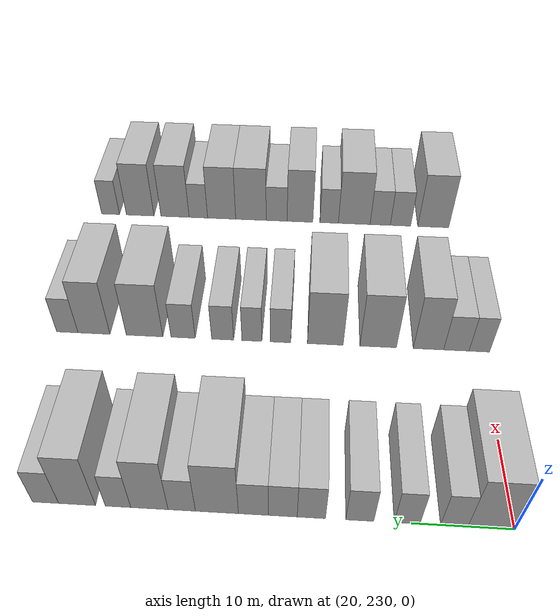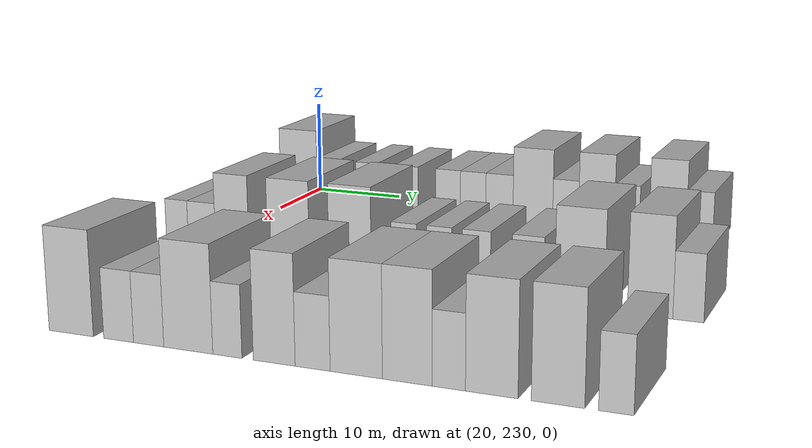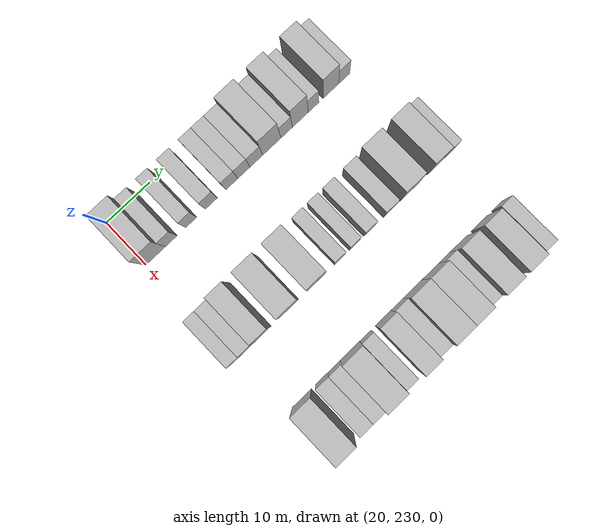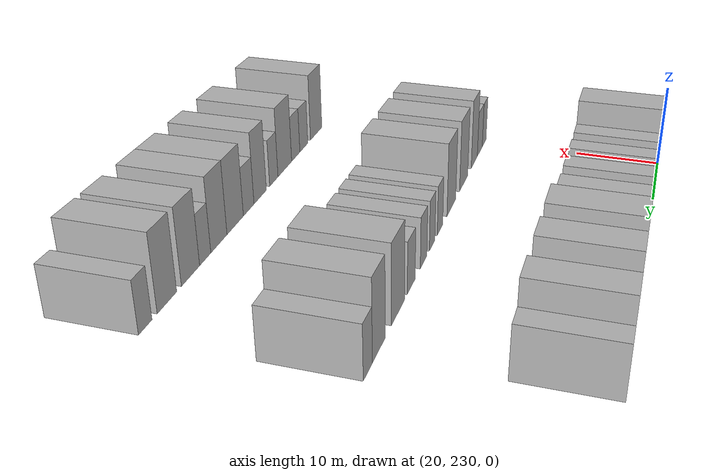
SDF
<sdf version="1.6">
 <world name="default">
  <model name="building_153">
   <static>1</static>
   <pose>25.0000 232.2535 0 0.000000 0.000000 0.000000</pose>
   <link name="link">
    <pose>0 0 4.50 0 0 0</pose>
    <collision name="collision"><geometry><box><size>10.0000 4.4986 9.0000</size></box></geometry></collision>
    <visual name="visual">
     <cast_shadows>0</cast_shadows>
     <geometry><box><size>10.0000 4.4986 9.0000</size></box></geometry>
     <material>
      <script>
       <uri>model://HANNAS_wall/materials/scripts</uri>
       <uri>model://HANNAS_wall/materials/textures</uri>
       <name>vrc/HANNAS_wall</name>
      </script>
     </material>
    </visual>
   </link>
  </model>
  <model name="building_154">
   <static>1</static>
   <pose>25.0000 235.8311 0 0.000000 0.000000 0.000000</pose>
   <link name="link">
    <pose>0 0 3.00 0 0 0</pose>
    <collision name="collision"><geometry><box><size>10.0000 2.6566 6.0000</size></box></geometry></collision>
    <visual name="visual">
     <cast_shadows>0</cast_shadows>
     <geometry><box><size>10.0000 2.6566 6.0000</size></box></geometry>
     <material>
      <script>
       <uri>model://HANNAS_wall/materials/scripts</uri>
       <uri>model://HANNAS_wall/materials/textures</uri>
       <name>vrc/HANNAS_wall</name>
      </script>
     </material>
    </visual>
   </link>
  </model>
  <model name="building_155">
   <static>1</static>
   <pose>25.0000 240.4203 0 0.000000 0.000000 0.000000</pose>
   <link name="link">
    <pose>0 0 3.00 0 0 0</pose>
    <collision name="collision"><geometry><box><size>10.0000 2.5218 6.0000</size></box></geometry></collision>
    <visual name="visual">
     <cast_shadows>0</cast_shadows>
     <geometry><box><size>10.0000 2.5218 6.0000</size></box></geometry>
     <material>
      <script>
       <uri>model://HANNAS_wall/materials/scripts</uri>
       <uri>model://HANNAS_wall/materials/textures</uri>
       <name>vrc/HANNAS_wall</name>
      </script>
     </material>
    </visual>
   </link>
  </model>
  <model name="building_156">
   <static>1</static>
   <pose>25.0000 245.0591 0 0.000000 0.000000 0.000000</pose>
   <link name="link">
    <pose>0 0 3.00 0 0 0</pose>
    <collision name="collision"><geometry><box><size>10.0000 2.7556 6.0000</size></box></geometry></collision>
    <visual name="visual">
     <cast_shadows>0</cast_shadows>
     <geometry><box><size>10.0000 2.7556 6.0000</size></box></geometry>
     <material>
      <script>
       <uri>model://HANNAS_wall/materials/scripts</uri>
       <uri>model://HANNAS_wall/materials/textures</uri>
       <name>vrc/HANNAS_wall</name>
      </script>
     </material>
    </visual>
   </link>
  </model>
  <model name="building_157">
   <static>1</static>
   <pose>25.0000 249.8324 0 0.000000 0.000000 0.000000</pose>
   <link name="link">
    <pose>0 0 3.00 0 0 0</pose>
    <collision name="collision"><geometry><box><size>10.0000 2.7912 6.0000</size></box></geometry></collision>
    <visual name="visual">
     <cast_shadows>0</cast_shadows>
     <geometry><box><size>10.0000 2.7912 6.0000</size></box></geometry>
     <material>
      <script>
       <uri>model://HANNAS_wall/materials/scripts</uri>
       <uri>model://HANNAS_wall/materials/textures</uri>
       <name>vrc/HANNAS_wall</name>
      </script>
     </material>
    </visual>
   </link>
  </model>
  <model name="building_158">
   <static>1</static>
   <pose>25.0000 252.6497 0 0.000000 0.000000 0.000000</pose>
   <link name="link">
    <pose>0 0 3.00 0 0 0</pose>
    <collision name="collision"><geometry><box><size>10.0000 2.8433 6.0000</size></box></geometry></collision>
    <visual name="visual">
     <cast_shadows>0</cast_shadows>
     <geometry><box><size>10.0000 2.8433 6.0000</size></box></geometry>
     <material>
      <script>
       <uri>model://HANNAS_wall/materials/scripts</uri>
       <uri>model://HANNAS_wall/materials/textures</uri>
       <name>vrc/HANNAS_wall</name>
      </script>
     </material>
    </visual>
   </link>
  </model>
  <model name="building_159">
   <static>1</static>
   <pose>25.0000 255.5650 0 0.000000 0.000000 0.000000</pose>
   <link name="link">
    <pose>0 0 3.00 0 0 0</pose>
    <collision name="collision"><geometry><box><size>10.0000 2.9873 6.0000</size></box></geometry></collision>
    <visual name="visual">
     <cast_shadows>0</cast_shadows>
     <geometry><box><size>10.0000 2.9873 6.0000</size></box></geometry>
     <material>
      <script>
       <uri>model://HANNAS_wall/materials/scripts</uri>
       <uri>model://HANNAS_wall/materials/textures</uri>
       <name>vrc/HANNAS_wall</name>
      </script>
     </material>
    </visual>
   </link>
  </model>
  <model name="building_160">
   <static>1</static>
   <pose>25.0000 259.2042 0 0.000000 0.000000 0.000000</pose>
   <link name="link">
    <pose>0 0 4.50 0 0 0</pose>
    <collision name="collision"><geometry><box><size>10.0000 4.2912 9.0000</size></box></geometry></collision>
    <visual name="visual">
     <cast_shadows>0</cast_shadows>
     <geometry><box><size>10.0000 4.2912 9.0000</size></box></geometry>
     <material>
      <script>
       <uri>model://HANNAS_wall/materials/scripts</uri>
       <uri>model://HANNAS_wall/materials/textures</uri>
       <name>vrc/HANNAS_wall</name>
      </script>
     </material>
    </visual>
   </link>
  </model>
  <model name="building_161">
   <static>1</static>
   <pose>25.0000 262.7184 0 0.000000 0.000000 0.000000</pose>
   <link name="link">
    <pose>0 0 3.00 0 0 0</pose>
    <collision name="collision"><geometry><box><size>10.0000 2.7372 6.0000</size></box></geometry></collision>
    <visual name="visual">
     <cast_shadows>0</cast_shadows>
     <geometry><box><size>10.0000 2.7372 6.0000</size></box></geometry>
     <material>
      <script>
       <uri>model://HANNAS_wall/materials/scripts</uri>
       <uri>model://HANNAS_wall/materials/textures</uri>
       <name>vrc/HANNAS_wall</name>
      </script>
     </material>
    </visual>
   </link>
  </model>
  <model name="building_162">
   <static>1</static>
   <pose>25.0000 265.9661 0 0.000000 0.000000 0.000000</pose>
   <link name="link">
    <pose>0 0 4.50 0 0 0</pose>
    <collision name="collision"><geometry><box><size>10.0000 3.7582 9.0000</size></box></geometry></collision>
    <visual name="visual">
     <cast_shadows>0</cast_shadows>
     <geometry><box><size>10.0000 3.7582 9.0000</size></box></geometry>
     <material>
      <script>
       <uri>model://HANNAS_wall/materials/scripts</uri>
       <uri>model://HANNAS_wall/materials/textures</uri>
       <name>vrc/HANNAS_wall</name>
      </script>
     </material>
    </visual>
   </link>
  </model>
  <model name="building_163">
   <static>1</static>
   <pose>25.0000 269.1298 0 0.000000 0.000000 0.000000</pose>
   <link name="link">
    <pose>0 0 3.00 0 0 0</pose>
    <collision name="collision"><geometry><box><size>10.0000 2.5691 6.0000</size></box></geometry></collision>
    <visual name="visual">
     <cast_shadows>0</cast_shadows>
     <geometry><box><size>10.0000 2.5691 6.0000</size></box></geometry>
     <material>
      <script>
       <uri>model://HANNAS_wall/materials/scripts</uri>
       <uri>model://HANNAS_wall/materials/textures</uri>
       <name>vrc/HANNAS_wall</name>
      </script>
     </material>
    </visual>
   </link>
  </model>
  <model name="building_164">
   <static>1</static>
   <pose>25.0000 273.2810 0 0.000000 0.000000 0.000000</pose>
   <link name="link">
    <pose>0 0 4.50 0 0 0</pose>
    <collision name="collision"><geometry><box><size>10.0000 3.7334 9.0000</size></box></geometry></collision>
    <visual name="visual">
     <cast_shadows>0</cast_shadows>
     <geometry><box><size>10.0000 3.7334 9.0000</size></box></geometry>
     <material>
      <script>
       <uri>model://HANNAS_wall/materials/scripts</uri>
       <uri>model://HANNAS_wall/materials/textures</uri>
       <name>vrc/HANNAS_wall</name>
      </script>
     </material>
    </visual>
   </link>
  </model>
  <model name="building_165">
   <static>1</static>
   <pose>25.0000 276.4773 0 0.000000 0.000000 0.000000</pose>
   <link name="link">
    <pose>0 0 3.00 0 0 0</pose>
    <collision name="collision"><geometry><box><size>10.0000 2.6591 6.0000</size></box></geometry></collision>
    <visual name="visual">
     <cast_shadows>0</cast_shadows>
     <geometry><box><size>10.0000 2.6591 6.0000</size></box></geometry>
     <material>
      <script>
       <uri>model://HANNAS_wall/materials/scripts</uri>
       <uri>model://HANNAS_wall/materials/textures</uri>
       <name>vrc/HANNAS_wall</name>
      </script>
     </material>
    </visual>
   </link>
  </model>
  <model name="building_346">
   <static>1</static>
   <pose>47.0000 230.3441 0 0.000000 0.000000 0.000000</pose>
   <link name="link">
    <pose>0 0 3.00 0 0 0</pose>
    <collision name="collision"><geometry><box><size>10.0000 2.4305 6.0000</size></box></geometry></collision>
    <visual name="visual">
     <cast_shadows>0</cast_shadows>
     <geometry><box><size>10.0000 2.4305 6.0000</size></box></geometry>
     <material>
      <script>
       <uri>model://HANNAS_wall/materials/scripts</uri>
       <uri>model://HANNAS_wall/materials/textures</uri>
       <name>vrc/HANNAS_wall</name>
      </script>
     </material>
    </visual>
   </link>
  </model>
  <model name="building_347">
   <static>1</static>
   <pose>47.0000 233.0564 0 0.000000 0.000000 0.000000</pose>
   <link name="link">
    <pose>0 0 3.00 0 0 0</pose>
    <collision name="collision"><geometry><box><size>10.0000 2.9942 6.0000</size></box></geometry></collision>
    <visual name="visual">
     <cast_shadows>0</cast_shadows>
     <geometry><box><size>10.0000 2.9942 6.0000</size></box></geometry>
     <material>
      <script>
       <uri>model://HANNAS_wall/materials/scripts</uri>
       <uri>model://HANNAS_wall/materials/textures</uri>
       <name>vrc/HANNAS_wall</name>
      </script>
     </material>
    </visual>
   </link>
  </model>
  <model name="building_348">
   <static>1</static>
   <pose>47.0000 236.3539 0 0.000000 0.000000 0.000000</pose>
   <link name="link">
    <pose>0 0 4.50 0 0 0</pose>
    <collision name="collision"><geometry><box><size>10.0000 3.6007 9.0000</size></box></geometry></collision>
    <visual name="visual">
     <cast_shadows>0</cast_shadows>
     <geometry><box><size>10.0000 3.6007 9.0000</size></box></geometry>
     <material>
      <script>
       <uri>model://HANNAS_wall/materials/scripts</uri>
       <uri>model://HANNAS_wall/materials/textures</uri>
       <name>vrc/HANNAS_wall</name>
      </script>
     </material>
    </visual>
   </link>
  </model>
  <model name="building_349">
   <static>1</static>
   <pose>47.0000 242.3327 0 0.000000 0.000000 0.000000</pose>
   <link name="link">
    <pose>0 0 4.50 0 0 0</pose>
    <collision name="collision"><geometry><box><size>10.0000 4.3569 9.0000</size></box></geometry></collision>
    <visual name="visual">
     <cast_shadows>0</cast_shadows>
     <geometry><box><size>10.0000 4.3569 9.0000</size></box></geometry>
     <material>
      <script>
       <uri>model://HANNAS_wall/materials/scripts</uri>
       <uri>model://HANNAS_wall/materials/textures</uri>
       <name>vrc/HANNAS_wall</name>
      </script>
     </material>
    </visual>
   </link>
  </model>
  <model name="building_350">
   <static>1</static>
   <pose>47.0000 248.6556 0 0.000000 0.000000 0.000000</pose>
   <link name="link">
    <pose>0 0 4.50 0 0 0</pose>
    <collision name="collision"><geometry><box><size>10.0000 4.2888 9.0000</size></box></geometry></collision>
    <visual name="visual">
     <cast_shadows>0</cast_shadows>
     <geometry><box><size>10.0000 4.2888 9.0000</size></box></geometry>
     <material>
      <script>
       <uri>model://HANNAS_wall/materials/scripts</uri>
       <uri>model://HANNAS_wall/materials/textures</uri>
       <name>vrc/HANNAS_wall</name>
      </script>
     </material>
    </visual>
   </link>
  </model>
  <model name="building_351">
   <static>1</static>
   <pose>47.0000 254.0440 0 0.000000 0.000000 0.000000</pose>
   <link name="link">
    <pose>0 0 3.00 0 0 0</pose>
    <collision name="collision"><geometry><box><size>10.0000 2.4880 6.0000</size></box></geometry></collision>
    <visual name="visual">
     <cast_shadows>0</cast_shadows>
     <geometry><box><size>10.0000 2.4880 6.0000</size></box></geometry>
     <material>
      <script>
       <uri>model://HANNAS_wall/materials/scripts</uri>
       <uri>model://HANNAS_wall/materials/textures</uri>
       <name>vrc/HANNAS_wall</name>
      </script>
     </material>
    </visual>
   </link>
  </model>
  <model name="building_352">
   <static>1</static>
   <pose>47.0000 257.4914 0 0.000000 0.000000 0.000000</pose>
   <link name="link">
    <pose>0 0 3.00 0 0 0</pose>
    <collision name="collision"><geometry><box><size>10.0000 2.4069 6.0000</size></box></geometry></collision>
    <visual name="visual">
     <cast_shadows>0</cast_shadows>
     <geometry><box><size>10.0000 2.4069 6.0000</size></box></geometry>
     <material>
      <script>
       <uri>model://HANNAS_wall/materials/scripts</uri>
       <uri>model://HANNAS_wall/materials/textures</uri>
       <name>vrc/HANNAS_wall</name>
      </script>
     </material>
    </visual>
   </link>
  </model>
  <model name="building_353">
   <static>1</static>
   <pose>47.0000 261.0275 0 0.000000 0.000000 0.000000</pose>
   <link name="link">
    <pose>0 0 3.00 0 0 0</pose>
    <collision name="collision"><geometry><box><size>10.0000 2.6653 6.0000</size></box></geometry></collision>
    <visual name="visual">
     <cast_shadows>0</cast_shadows>
     <geometry><box><size>10.0000 2.6653 6.0000</size></box></geometry>
     <material>
      <script>
       <uri>model://HANNAS_wall/materials/scripts</uri>
       <uri>model://HANNAS_wall/materials/textures</uri>
       <name>vrc/HANNAS_wall</name>
      </script>
     </material>
    </visual>
   </link>
  </model>
  <model name="building_354">
   <static>1</static>
   <pose>47.0000 265.8358 0 0.000000 0.000000 0.000000</pose>
   <link name="link">
    <pose>0 0 3.00 0 0 0</pose>
    <collision name="collision"><geometry><box><size>10.0000 2.9512 6.0000</size></box></geometry></collision>
    <visual name="visual">
     <cast_shadows>0</cast_shadows>
     <geometry><box><size>10.0000 2.9512 6.0000</size></box></geometry>
     <material>
      <script>
       <uri>model://HANNAS_wall/materials/scripts</uri>
       <uri>model://HANNAS_wall/materials/textures</uri>
       <name>vrc/HANNAS_wall</name>
      </script>
     </material>
    </visual>
   </link>
  </model>
  <model name="building_355">
   <static>1</static>
   <pose>47.0000 270.5517 0 0.000000 0.000000 0.000000</pose>
   <link name="link">
    <pose>0 0 4.50 0 0 0</pose>
    <collision name="collision"><geometry><box><size>10.0000 4.4806 9.0000</size></box></geometry></collision>
    <visual name="visual">
     <cast_shadows>0</cast_shadows>
     <geometry><box><size>10.0000 4.4806 9.0000</size></box></geometry>
     <material>
      <script>
       <uri>model://HANNAS_wall/materials/scripts</uri>
       <uri>model://HANNAS_wall/materials/textures</uri>
       <name>vrc/HANNAS_wall</name>
      </script>
     </material>
    </visual>
   </link>
  </model>
  <model name="building_356">
   <static>1</static>
   <pose>47.0000 276.7595 0 0.000000 0.000000 0.000000</pose>
   <link name="link">
    <pose>0 0 4.50 0 0 0</pose>
    <collision name="collision"><geometry><box><size>10.0000 3.9350 9.0000</size></box></geometry></collision>
    <visual name="visual">
     <cast_shadows>0</cast_shadows>
     <geometry><box><size>10.0000 3.9350 9.0000</size></box></geometry>
     <material>
      <script>
       <uri>model://HANNAS_wall/materials/scripts</uri>
       <uri>model://HANNAS_wall/materials/textures</uri>
       <name>vrc/HANNAS_wall</name>
      </script>
     </material>
    </visual>
   </link>
  </model>
  <model name="building_357">
   <static>1</static>
   <pose>47.0000 280.0479 0 0.000000 0.000000 0.000000</pose>
   <link name="link">
    <pose>0 0 3.00 0 0 0</pose>
    <collision name="collision"><geometry><box><size>10.0000 2.6418 6.0000</size></box></geometry></collision>
    <visual name="visual">
     <cast_shadows>0</cast_shadows>
     <geometry><box><size>10.0000 2.6418 6.0000</size></box></geometry>
     <material>
      <script>
       <uri>model://HANNAS_wall/materials/scripts</uri>
       <uri>model://HANNAS_wall/materials/textures</uri>
       <name>vrc/HANNAS_wall</name>
      </script>
     </material>
    </visual>
   </link>
  </model>
  <model name="building_531">
   <static>1</static>
   <pose>69.0000 233.6946 0 0.000000 0.000000 0.000000</pose>
   <link name="link">
    <pose>0 0 4.50 0 0 0</pose>
    <collision name="collision"><geometry><box><size>10.0000 4.3137 9.0000</size></box></geometry></collision>
    <visual name="visual">
     <cast_shadows>0</cast_shadows>
     <geometry><box><size>10.0000 4.3137 9.0000</size></box></geometry>
     <material>
      <script>
       <uri>model://HANNAS_wall/materials/scripts</uri>
       <uri>model://HANNAS_wall/materials/textures</uri>
       <name>vrc/HANNAS_wall</name>
      </script>
     </material>
    </visual>
   </link>
  </model>
  <model name="building_532">
   <static>1</static>
   <pose>69.0000 238.2735 0 0.000000 0.000000 0.000000</pose>
   <link name="link">
    <pose>0 0 3.00 0 0 0</pose>
    <collision name="collision"><geometry><box><size>10.0000 2.8442 6.0000</size></box></geometry></collision>
    <visual name="visual">
     <cast_shadows>0</cast_shadows>
     <geometry><box><size>10.0000 2.8442 6.0000</size></box></geometry>
     <material>
      <script>
       <uri>model://HANNAS_wall/materials/scripts</uri>
       <uri>model://HANNAS_wall/materials/textures</uri>
       <name>vrc/HANNAS_wall</name>
      </script>
     </material>
    </visual>
   </link>
  </model>
  <model name="building_533">
   <static>1</static>
   <pose>69.0000 241.1104 0 0.000000 0.000000 0.000000</pose>
   <link name="link">
    <pose>0 0 3.00 0 0 0</pose>
    <collision name="collision"><geometry><box><size>10.0000 2.8296 6.0000</size></box></geometry></collision>
    <visual name="visual">
     <cast_shadows>0</cast_shadows>
     <geometry><box><size>10.0000 2.8296 6.0000</size></box></geometry>
     <material>
      <script>
       <uri>model://HANNAS_wall/materials/scripts</uri>
       <uri>model://HANNAS_wall/materials/textures</uri>
       <name>vrc/HANNAS_wall</name>
      </script>
     </material>
    </visual>
   </link>
  </model>
  <model name="building_534">
   <static>1</static>
   <pose>69.0000 244.7649 0 0.000000 0.000000 0.000000</pose>
   <link name="link">
    <pose>0 0 4.50 0 0 0</pose>
    <collision name="collision"><geometry><box><size>10.0000 4.4792 9.0000</size></box></geometry></collision>
    <visual name="visual">
     <cast_shadows>0</cast_shadows>
     <geometry><box><size>10.0000 4.4792 9.0000</size></box></geometry>
     <material>
      <script>
       <uri>model://HANNAS_wall/materials/scripts</uri>
       <uri>model://HANNAS_wall/materials/textures</uri>
       <name>vrc/HANNAS_wall</name>
      </script>
     </material>
    </visual>
   </link>
  </model>
  <model name="building_535">
   <static>1</static>
   <pose>69.0000 248.3080 0 0.000000 0.000000 0.000000</pose>
   <link name="link">
    <pose>0 0 3.00 0 0 0</pose>
    <collision name="collision"><geometry><box><size>10.0000 2.6070 6.0000</size></box></geometry></collision>
    <visual name="visual">
     <cast_shadows>0</cast_shadows>
     <geometry><box><size>10.0000 2.6070 6.0000</size></box></geometry>
     <material>
      <script>
       <uri>model://HANNAS_wall/materials/scripts</uri>
       <uri>model://HANNAS_wall/materials/textures</uri>
       <name>vrc/HANNAS_wall</name>
      </script>
     </material>
    </visual>
   </link>
  </model>
  <model name="building_536">
   <static>1</static>
   <pose>69.0000 252.4339 0 0.000000 0.000000 0.000000</pose>
   <link name="link">
    <pose>0 0 4.50 0 0 0</pose>
    <collision name="collision"><geometry><box><size>10.0000 3.6448 9.0000</size></box></geometry></collision>
    <visual name="visual">
     <cast_shadows>0</cast_shadows>
     <geometry><box><size>10.0000 3.6448 9.0000</size></box></geometry>
     <material>
      <script>
       <uri>model://HANNAS_wall/materials/scripts</uri>
       <uri>model://HANNAS_wall/materials/textures</uri>
       <name>vrc/HANNAS_wall</name>
      </script>
     </material>
    </visual>
   </link>
  </model>
  <model name="building_537">
   <static>1</static>
   <pose>69.0000 255.7431 0 0.000000 0.000000 0.000000</pose>
   <link name="link">
    <pose>0 0 3.00 0 0 0</pose>
    <collision name="collision"><geometry><box><size>10.0000 2.9737 6.0000</size></box></geometry></collision>
    <visual name="visual">
     <cast_shadows>0</cast_shadows>
     <geometry><box><size>10.0000 2.9737 6.0000</size></box></geometry>
     <material>
      <script>
       <uri>model://HANNAS_wall/materials/scripts</uri>
       <uri>model://HANNAS_wall/materials/textures</uri>
       <name>vrc/HANNAS_wall</name>
      </script>
     </material>
    </visual>
   </link>
  </model>
  <model name="building_538">
   <static>1</static>
   <pose>69.0000 259.4017 0 0.000000 0.000000 0.000000</pose>
   <link name="link">
    <pose>0 0 4.50 0 0 0</pose>
    <collision name="collision"><geometry><box><size>10.0000 4.3435 9.0000</size></box></geometry></collision>
    <visual name="visual">
     <cast_shadows>0</cast_shadows>
     <geometry><box><size>10.0000 4.3435 9.0000</size></box></geometry>
     <material>
      <script>
       <uri>model://HANNAS_wall/materials/scripts</uri>
       <uri>model://HANNAS_wall/materials/textures</uri>
       <name>vrc/HANNAS_wall</name>
      </script>
     </material>
    </visual>
   </link>
  </model>
  <model name="building_539">
   <static>1</static>
   <pose>69.0000 263.5780 0 0.000000 0.000000 0.000000</pose>
   <link name="link">
    <pose>0 0 4.50 0 0 0</pose>
    <collision name="collision"><geometry><box><size>10.0000 4.0091 9.0000</size></box></geometry></collision>
    <visual name="visual">
     <cast_shadows>0</cast_shadows>
     <geometry><box><size>10.0000 4.0091 9.0000</size></box></geometry>
     <material>
      <script>
       <uri>model://HANNAS_wall/materials/scripts</uri>
       <uri>model://HANNAS_wall/materials/textures</uri>
       <name>vrc/HANNAS_wall</name>
      </script>
     </material>
    </visual>
   </link>
  </model>
  <model name="building_540">
   <static>1</static>
   <pose>69.0000 266.9035 0 0.000000 0.000000 0.000000</pose>
   <link name="link">
    <pose>0 0 3.00 0 0 0</pose>
    <collision name="collision"><geometry><box><size>10.0000 2.6417 6.0000</size></box></geometry></collision>
    <visual name="visual">
     <cast_shadows>0</cast_shadows>
     <geometry><box><size>10.0000 2.6417 6.0000</size></box></geometry>
     <material>
      <script>
       <uri>model://HANNAS_wall/materials/scripts</uri>
       <uri>model://HANNAS_wall/materials/textures</uri>
       <name>vrc/HANNAS_wall</name>
      </script>
     </material>
    </visual>
   </link>
  </model>
  <model name="building_541">
   <static>1</static>
   <pose>69.0000 270.2527 0 0.000000 0.000000 0.000000</pose>
   <link name="link">
    <pose>0 0 4.50 0 0 0</pose>
    <collision name="collision"><geometry><box><size>10.0000 4.0567 9.0000</size></box></geometry></collision>
    <visual name="visual">
     <cast_shadows>0</cast_shadows>
     <geometry><box><size>10.0000 4.0567 9.0000</size></box></geometry>
     <material>
      <script>
       <uri>model://HANNAS_wall/materials/scripts</uri>
       <uri>model://HANNAS_wall/materials/textures</uri>
       <name>vrc/HANNAS_wall</name>
      </script>
     </material>
    </visual>
   </link>
  </model>
  <model name="building_542">
   <static>1</static>
   <pose>69.0000 275.2758 0 0.000000 0.000000 0.000000</pose>
   <link name="link">
    <pose>0 0 4.50 0 0 0</pose>
    <collision name="collision"><geometry><box><size>10.0000 3.9896 9.0000</size></box></geometry></collision>
    <visual name="visual">
     <cast_shadows>0</cast_shadows>
     <geometry><box><size>10.0000 3.9896 9.0000</size></box></geometry>
     <material>
      <script>
       <uri>model://HANNAS_wall/materials/scripts</uri>
       <uri>model://HANNAS_wall/materials/textures</uri>
       <name>vrc/HANNAS_wall</name>
      </script>
     </material>
    </visual>
   </link>
  </model>
  <model name="building_543">
   <static>1</static>
   <pose>69.0000 279.5559 0 0.000000 0.000000 0.000000</pose>
   <link name="link">
    <pose>0 0 3.00 0 0 0</pose>
    <collision name="collision"><geometry><box><size>10.0000 2.5707 6.0000</size></box></geometry></collision>
    <visual name="visual">
     <cast_shadows>0</cast_shadows>
     <geometry><box><size>10.0000 2.5707 6.0000</size></box></geometry>
     <material>
      <script>
       <uri>model://HANNAS_wall/materials/scripts</uri>
       <uri>model://HANNAS_wall/materials/textures</uri>
       <name>vrc/HANNAS_wall</name>
      </script>
     </material>
    </visual>
   </link>
  </model>
 </world>
</sdf>
